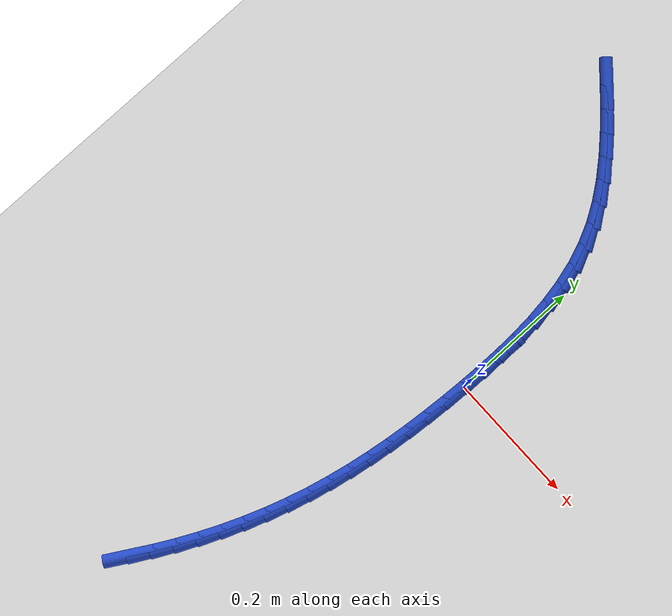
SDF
<sdf version="1.6">
 <world name="default">
  <model name="ground_plane">
   <static>1</static>
   <link name="link">
    <collision name="collision">
     <geometry><plane><normal>0 0 1</normal><size>100 100</size></plane></geometry>
     <surface><friction><ode><mu>100</mu><mu2>50</mu2></ode></friction></surface>
    </collision>
    <visual name="visual">
     <cast_shadows>0</cast_shadows>
     <geometry><plane><normal>0 0 1</normal><size>100 100</size></plane></geometry>
     <material>
      <script><uri>file://media/materials/scripts/gazebo.material</uri><name>Gazebo/WhiteGlow</name></script>
     </material>
    </visual>
   </link>
  </model>
  <model name="line">
   <link name="link_0">
    <pose>-1.3660947373317356e-17 -4.163336342344337e-17 0.01 0 1.57 1.5384901847299584</pose>
    <collision name="collision">
     <geometry><cylinder><radius>0.01</radius><length>0.08</length></cylinder></geometry>
    </collision>
    <visual name="visual">
     <material>
      <script><name>Gazebo/Blue</name><uri>file://media/materials/scripts/gazebo.material</uri></script>
     </material>
     <geometry><cylinder><radius>0.01</radius><length>0.08</length></cylinder></geometry>
    </visual>
   </link>
   <link name="link_1">
    <pose>0.0011236001775610416 0.0347676690252532 0.01 0 1.57 1.5636642967160483</pose>
    <collision name="collision">
     <geometry><cylinder><radius>0.01</radius><length>0.08</length></cylinder></geometry>
    </collision>
    <visual name="visual">
     <material>
      <script><name>Gazebo/Blue</name><uri>file://media/materials/scripts/gazebo.material</uri></script>
     </material>
     <geometry><cylinder><radius>0.01</radius><length>0.08</length></cylinder></geometry>
    </visual>
   </link>
   <link name="link_2">
    <pose>0.0013723359309956262 0.06964294763246584 0.01 0 1.57 -1.5438584381845137</pose>
    <collision name="collision">
     <geometry><cylinder><radius>0.01</radius><length>0.08</length></cylinder></geometry>
    </collision>
    <visual name="visual">
     <material>
      <script><name>Gazebo/Blue</name><uri>file://media/materials/scripts/gazebo.material</uri></script>
     </material>
     <geometry><cylinder><radius>0.01</radius><length>0.08</length></cylinder></geometry>
    </visual>
   </link>
   <link name="link_3">
    <pose>0.0004349520113933465 0.10443250314252683 0.01 0 1.57 -1.5003617857551466</pose>
    <collision name="collision">
     <geometry><cylinder><radius>0.01</radius><length>0.08</length></cylinder></geometry>
    </collision>
    <visual name="visual">
     <material>
      <script><name>Gazebo/Blue</name><uri>file://media/materials/scripts/gazebo.material</uri></script>
     </material>
     <geometry><cylinder><radius>0.01</radius><length>0.08</length></cylinder></geometry>
    </visual>
   </link>
   <link name="link_4">
    <pose>-0.001999806830156192 0.13894300287632502 0.01 0 1.57 -1.4467703857361287</pose>
    <collision name="collision">
     <geometry><cylinder><radius>0.01</radius><length>0.08</length></cylinder></geometry>
    </collision>
    <visual name="visual">
     <material>
      <script><name>Gazebo/Blue</name><uri>file://media/materials/scripts/gazebo.material</uri></script>
     </material>
     <geometry><cylinder><radius>0.01</radius><length>0.08</length></cylinder></geometry>
    </visual>
   </link>
   <link name="link_5">
    <pose>-0.006243195842563384 0.1729811141547494 0.01 0 1.57 -1.382383154661688</pose>
    <collision name="collision">
     <geometry><cylinder><radius>0.01</radius><length>0.08</length></cylinder></geometry>
    </collision>
    <visual name="visual">
     <material>
      <script><name>Gazebo/Blue</name><uri>file://media/materials/scripts/gazebo.material</uri></script>
     </material>
     <geometry><cylinder><radius>0.01</radius><length>0.08</length></cylinder></geometry>
    </visual>
   </link>
   <link name="link_6">
    <pose>-0.01260647027473862 0.20635350429868887 0.01 0 1.57 -1.306631202709869</pose>
    <collision name="collision">
     <geometry><cylinder><radius>0.01</radius><length>0.08</length></cylinder></geometry>
    </collision>
    <visual name="visual">
     <material>
      <script><name>Gazebo/Blue</name><uri>file://media/materials/scripts/gazebo.material</uri></script>
     </material>
     <geometry><cylinder><radius>0.01</radius><length>0.08</length></cylinder></geometry>
    </visual>
   </link>
   <link name="link_7">
    <pose>-0.021400885375592312 0.2388668406290323 0.01 0 1.57 -1.2193198887436778</pose>
    <collision name="collision">
     <geometry><cylinder><radius>0.01</radius><length>0.08</length></cylinder></geometry>
    </collision>
    <visual name="visual">
     <material>
      <script><name>Gazebo/Blue</name><uri>file://media/materials/scripts/gazebo.material</uri></script>
     </material>
     <geometry><cylinder><radius>0.01</radius><length>0.08</length></cylinder></geometry>
    </visual>
   </link>
   <link name="link_8">
    <pose>-0.03293769639403482 0.27032779046666855 0.01 0 1.57 -1.120965788050166</pose>
    <collision name="collision">
     <geometry><cylinder><radius>0.01</radius><length>0.08</length></cylinder></geometry>
    </collision>
    <visual name="visual">
     <material>
      <script><name>Gazebo/Blue</name><uri>file://media/materials/scripts/gazebo.material</uri></script>
     </material>
     <geometry><cylinder><radius>0.01</radius><length>0.08</length></cylinder></geometry>
    </visual>
   </link>
   <link name="link_9">
    <pose>-0.04752722354716291 0.3005434798705982 0.01 0 1.57 -1.0199367805898423</pose>
    <collision name="collision">
     <geometry><cylinder><radius>0.01</radius><length>0.08</length></cylinder></geometry>
    </collision>
    <visual name="visual">
     <material>
      <script><name>Gazebo/Blue</name><uri>file://media/materials/scripts/gazebo.material</uri></script>
     </material>
     <geometry><cylinder><radius>0.01</radius><length>0.08</length></cylinder></geometry>
    </visual>
   </link>
   <link name="link_10">
    <pose>-0.06526859327880014 0.32942464916334213 0.01 0 1.57 -0.9331966750000591</pose>
    <collision name="collision">
     <geometry><cylinder><radius>0.01</radius><length>0.08</length></cylinder></geometry>
    </collision>
    <visual name="visual">
     <material>
      <script><name>Gazebo/Blue</name><uri>file://media/materials/scripts/gazebo.material</uri></script>
     </material>
     <geometry><cylinder><radius>0.01</radius><length>0.08</length></cylinder></geometry>
    </visual>
   </link>
   <link name="link_11">
    <pose>-0.08578319782332511 0.3571164209482183 0.01 0 1.57 -0.8627052753541691</pose>
    <collision name="collision">
     <geometry><cylinder><radius>0.01</radius><length>0.08</length></cylinder></geometry>
    </collision>
    <visual name="visual">
     <material>
      <script><name>Gazebo/Blue</name><uri>file://media/materials/scripts/gazebo.material</uri></script>
     </material>
     <geometry><cylinder><radius>0.01</radius><length>0.08</length></cylinder></geometry>
    </visual>
   </link>
   <link name="link_12">
    <pose>-0.1086267640760308 0.38379613405179236 0.01 0 1.57 -0.8074761785815207</pose>
    <collision name="collision">
     <geometry><cylinder><radius>0.01</radius><length>0.08</length></cylinder></geometry>
    </collision>
    <visual name="visual">
     <material>
      <script><name>Gazebo/Blue</name><uri>file://media/materials/scripts/gazebo.material</uri></script>
     </material>
     <geometry><cylinder><radius>0.01</radius><length>0.08</length></cylinder></geometry>
    </visual>
   </link>
   <link name="link_13">
    <pose>-0.13335501893221036 0.4096411273006293 0.01 0 1.57 -0.7662975047435123</pose>
    <collision name="collision">
     <geometry><cylinder><radius>0.01</radius><length>0.08</length></cylinder></geometry>
    </collision>
    <visual name="visual">
     <material>
      <script><name>Gazebo/Blue</name><uri>file://media/materials/scripts/gazebo.material</uri></script>
     </material>
     <geometry><cylinder><radius>0.01</radius><length>0.08</length></cylinder></geometry>
    </visual>
   </link>
   <link name="link_14">
    <pose>-0.15952368928715696 0.43482873952129464 0.01 0 1.57 -0.7380626247459453</pose>
    <collision name="collision">
     <geometry><cylinder><radius>0.01</radius><length>0.08</length></cylinder></geometry>
    </collision>
    <visual name="visual">
     <material>
      <script><name>Gazebo/Blue</name><uri>file://media/materials/scripts/gazebo.material</uri></script>
     </material>
     <geometry><cylinder><radius>0.01</radius><length>0.08</length></cylinder></geometry>
    </visual>
   </link>
   <link name="link_15">
    <pose>-0.18668850203616344 0.4595363095403535 0.01 0 1.57 -0.7219432345789546</pose>
    <collision name="collision">
     <geometry><cylinder><radius>0.01</radius><length>0.08</length></cylinder></geometry>
    </collision>
    <visual name="visual">
     <material>
      <script><name>Gazebo/Blue</name><uri>file://media/materials/scripts/gazebo.material</uri></script>
     </material>
     <geometry><cylinder><radius>0.01</radius><length>0.08</length></cylinder></geometry>
    </visual>
   </link>
   <link name="link_194">
    <pose>-0.1445260027557214 -0.5179516455742771 0.01 0 1.57 1.0422765093857826</pose>
    <collision name="collision">
     <geometry><cylinder><radius>0.01</radius><length>0.08</length></cylinder></geometry>
    </collision>
    <visual name="visual">
     <material>
      <script><name>Gazebo/Blue</name><uri>file://media/materials/scripts/gazebo.material</uri></script>
     </material>
     <geometry><cylinder><radius>0.01</radius><length>0.08</length></cylinder></geometry>
    </visual>
   </link>
   <link name="link_195">
    <pose>-0.12744627996651733 -0.48870205933090743 0.01 0 1.57 1.075926518405867</pose>
    <collision name="collision">
     <geometry><cylinder><radius>0.01</radius><length>0.08</length></cylinder></geometry>
    </collision>
    <visual name="visual">
     <material>
      <script><name>Gazebo/Blue</name><uri>file://media/materials/scripts/gazebo.material</uri></script>
     </material>
     <geometry><cylinder><radius>0.01</radius><length>0.08</length></cylinder></geometry>
    </visual>
   </link>
   <link name="link_196">
    <pose>-0.11127454909463415 -0.4587355289789493 0.01 0 1.57 1.1098262257150695</pose>
    <collision name="collision">
     <geometry><cylinder><radius>0.01</radius><length>0.08</length></cylinder></geometry>
    </collision>
    <visual name="visual">
     <material>
      <script><name>Gazebo/Blue</name><uri>file://media/materials/scripts/gazebo.material</uri></script>
     </material>
     <geometry><cylinder><radius>0.01</radius><length>0.08</length></cylinder></geometry>
    </visual>
   </link>
   <link name="link_197">
    <pose>-0.09607700724388811 -0.42813589170760785 0.01 0 1.57 1.1442071043857842</pose>
    <collision name="collision">
     <geometry><cylinder><radius>0.01</radius><length>0.08</length></cylinder></geometry>
    </collision>
    <visual name="visual">
     <material>
      <script><name>Gazebo/Blue</name><uri>file://media/materials/scripts/gazebo.material</uri></script>
     </material>
     <geometry><cylinder><radius>0.01</radius><length>0.08</length></cylinder></geometry>
    </visual>
   </link>
   <link name="link_198">
    <pose>-0.08191985151809424 -0.39698698470608595 0.01 0 1.57 1.179299719675599</pose>
    <collision name="collision">
     <geometry><cylinder><radius>0.01</radius><length>0.08</length></cylinder></geometry>
    </collision>
    <visual name="visual">
     <material>
      <script><name>Gazebo/Blue</name><uri>file://media/materials/scripts/gazebo.material</uri></script>
     </material>
     <geometry><cylinder><radius>0.01</radius><length>0.08</length></cylinder></geometry>
    </visual>
   </link>
   <link name="link_199">
    <pose>-0.06886927902106801 -0.3653726451635875 0.01 0 1.57 1.2153365653255608</pose>
    <collision name="collision">
     <geometry><cylinder><radius>0.01</radius><length>0.08</length></cylinder></geometry>
    </collision>
    <visual name="visual">
     <material>
      <script><name>Gazebo/Blue</name><uri>file://media/materials/scripts/gazebo.material</uri></script>
     </material>
     <geometry><cylinder><radius>0.01</radius><length>0.08</length></cylinder></geometry>
    </visual>
   </link>
   <link name="link_200">
    <pose>-0.05699148685662498 -0.33337671026931626 0.01 0 1.57 1.2525544005319904</pose>
    <collision name="collision">
     <geometry><cylinder><radius>0.01</radius><length>0.08</length></cylinder></geometry>
    </collision>
    <visual name="visual">
     <material>
      <script><name>Gazebo/Blue</name><uri>file://media/materials/scripts/gazebo.material</uri></script>
     </material>
     <geometry><cylinder><radius>0.01</radius><length>0.08</length></cylinder></geometry>
    </visual>
   </link>
   <link name="link_201">
    <pose>-0.046352672128580616 -0.30108301721247593 0.01 0 1.57 1.2908887233495714</pose>
    <collision name="collision">
     <geometry><cylinder><radius>0.01</radius><length>0.08</length></cylinder></geometry>
    </collision>
    <visual name="visual">
     <material>
      <script><name>Gazebo/Blue</name><uri>file://media/materials/scripts/gazebo.material</uri></script>
     </material>
     <geometry><cylinder><radius>0.01</radius><length>0.08</length></cylinder></geometry>
    </visual>
   </link>
   <link name="link_202">
    <pose>-0.03700583107935247 -0.2685670961924169 0.01 0 1.57 1.3282020714311513</pose>
    <collision name="collision">
     <geometry><cylinder><radius>0.01</radius><length>0.08</length></cylinder></geometry>
    </collision>
    <visual name="visual">
     <material>
      <script><name>Gazebo/Blue</name><uri>file://media/materials/scripts/gazebo.material</uri></script>
     </material>
     <geometry><cylinder><radius>0.01</radius><length>0.08</length></cylinder></geometry>
    </visual>
   </link>
   <link name="link_203">
    <pose>-0.028907919891691763 -0.2358440416704668 0.01 0 1.57 1.3633185903831293</pose>
    <collision name="collision">
     <geometry><cylinder><radius>0.01</radius><length>0.08</length></cylinder></geometry>
    </collision>
    <visual name="visual">
     <material>
      <script><name>Gazebo/Blue</name><uri>file://media/materials/scripts/gazebo.material</uri></script>
     </material>
     <geometry><cylinder><radius>0.01</radius><length>0.08</length></cylinder></geometry>
    </visual>
   </link>
   <link name="link_204">
    <pose>-0.02197343795504129 -0.2029022310521041 0.01 0 1.57 1.3960421349875711</pose>
    <collision name="collision">
     <geometry><cylinder><radius>0.01</radius><length>0.08</length></cylinder></geometry>
    </collision>
    <visual name="visual">
     <material>
      <script><name>Gazebo/Blue</name><uri>file://media/materials/scripts/gazebo.material</uri></script>
     </material>
     <geometry><cylinder><radius>0.01</radius><length>0.08</length></cylinder></geometry>
    </visual>
   </link>
   <link name="link_205">
    <pose>-0.016116696687144744 -0.16972992345666338 0.01 0 1.57 1.4262260442607757</pose>
    <collision name="collision">
     <geometry><cylinder><radius>0.01</radius><length>0.08</length></cylinder></geometry>
    </collision>
    <visual name="visual">
     <material>
      <script><name>Gazebo/Blue</name><uri>file://media/materials/scripts/gazebo.material</uri></script>
     </material>
     <geometry><cylinder><radius>0.01</radius><length>0.08</length></cylinder></geometry>
    </visual>
   </link>
   <link name="link_206">
    <pose>-0.011252007505745808 -0.13631537800347926 0.01 0 1.57 1.4537660128974614</pose>
    <collision name="collision">
     <geometry><cylinder><radius>0.01</radius><length>0.08</length></cylinder></geometry>
    </collision>
    <visual name="visual">
     <material>
      <script><name>Gazebo/Blue</name><uri>file://media/materials/scripts/gazebo.material</uri></script>
     </material>
     <geometry><cylinder><radius>0.01</radius><length>0.08</length></cylinder></geometry>
    </visual>
   </link>
   <link name="link_207">
    <pose>-0.007293681828588172 -0.10264685381188622 0.01 0 1.57 1.4785958127181786</pose>
    <collision name="collision">
     <geometry><cylinder><radius>0.01</radius><length>0.08</length></cylinder></geometry>
    </collision>
    <visual name="visual">
     <material>
      <script><name>Gazebo/Blue</name><uri>file://media/materials/scripts/gazebo.material</uri></script>
     </material>
     <geometry><cylinder><radius>0.01</radius><length>0.08</length></cylinder></geometry>
    </visual>
   </link>
   <link name="link_208">
    <pose>-0.004156031073415531 -0.06871261000121895 0.01 0 1.57 1.5006821361406764</pose>
    <collision name="collision">
     <geometry><cylinder><radius>0.01</radius><length>0.08</length></cylinder></geometry>
    </collision>
    <visual name="visual">
     <material>
      <script><name>Gazebo/Blue</name><uri>file://media/materials/scripts/gazebo.material</uri></script>
     </material>
     <geometry><cylinder><radius>0.01</radius><length>0.08</length></cylinder></geometry>
    </visual>
   </link>
   <link name="link_209">
    <pose>-0.001753366657971532 -0.034500905690811205 0.01 0 1.57 1.520019124056445</pose>
    <collision name="collision">
     <geometry><cylinder><radius>0.01</radius><length>0.08</length></cylinder></geometry>
    </collision>
    <visual name="visual">
     <material>
      <script><name>Gazebo/Blue</name><uri>file://media/materials/scripts/gazebo.material</uri></script>
     </material>
     <geometry><cylinder><radius>0.01</radius><length>0.08</length></cylinder></geometry>
    </visual>
   </link>
   <link name="link_210">
    <pose>-7.047314121155779e-18 3.469446951953614e-17 0.01 0 1.57 1.5366230176810218</pose>
    <collision name="collision">
     <geometry><cylinder><radius>0.01</radius><length>0.08</length></cylinder></geometry>
    </collision>
    <visual name="visual">
     <material>
      <script><name>Gazebo/Blue</name><uri>file://media/materials/scripts/gazebo.material</uri></script>
     </material>
     <geometry><cylinder><radius>0.01</radius><length>0.08</length></cylinder></geometry>
    </visual>
   </link>
   <link name="link_211">
    <pose>0.0011897574827554919 0.034801847951882556 0.01 0 1.57 1.5505272421092196</pose>
    <collision name="collision">
     <geometry><cylinder><radius>0.01</radius><length>0.08</length></cylinder></geometry>
    </collision>
    <visual name="visual">
     <material>
      <script><name>Gazebo/Blue</name><uri>file://media/materials/scripts/gazebo.material</uri></script>
     </material>
     <geometry><cylinder><radius>0.01</radius><length>0.08</length></cylinder></geometry>
    </visual>
   </link>
   <link name="link_212">
    <pose>0.001901594372551253 0.06991637904550264 0.01 0 1.57 1.5436049059481993</pose>
    <collision name="collision">
     <geometry><cylinder><radius>0.01</radius><length>0.08</length></cylinder></geometry>
    </collision>
    <visual name="visual">
     <material>
      <script><name>Gazebo/Blue</name><uri>file://media/materials/scripts/gazebo.material</uri></script>
     </material>
     <geometry><cylinder><radius>0.01</radius><length>0.08</length></cylinder></geometry>
    </visual>
   </link>
  </model>
 </world>
</sdf>
